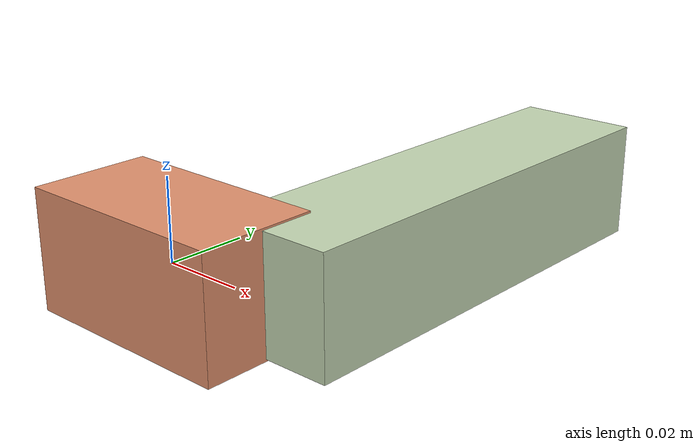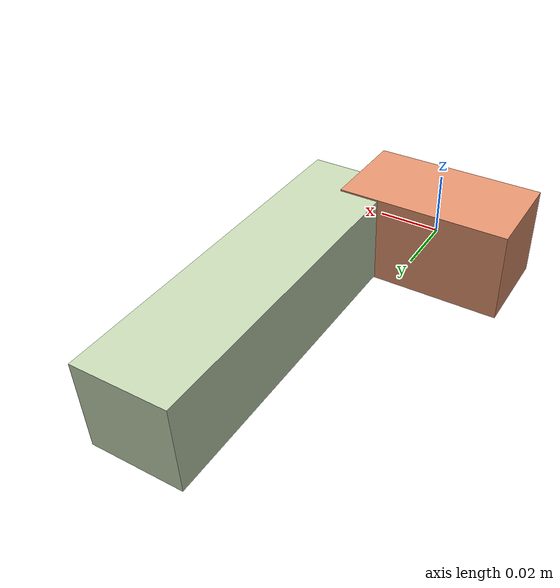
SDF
<sdf version="1.4"><world name="default"><model name="object0"><link name="link1"><pose>0 0 0 0 0 0</pose><inertial><pose>0 0 0 0 0 0</pose><mass>0.03010723345357542</mass><inertia><ixx>4.516085018036313e-06</ixx><ixy>0</ixy><iyy>1.0057129862971487e-05</iyy><ixz>0</ixz><iyz>0</iyz><izz>1.0057129862971487e-05</izz></inertia></inertial><visual name="link1_visual"><pose>0 0  0 0 0 0</pose><geometry><box><size>0.05575413602513968 0.03 0.03</size></box></geometry><material><diffuse>0.8857378945255381 0.5723068175640188 0.4286600054646875 1</diffuse></material></visual><collision><pose>0 0  0 0 0 0</pose><geometry><box><size>0.05575413602513968 0.03 0.03</size></box></geometry></collision></link><link name="link2"><pose>0.029760614620705943 0.05851517773528532 0 0 0 0</pose><inertial><pose>0 0 0 0 0 0</pose><mass>0.06199502186328007</mass><inertia><ixx>7.243769522185079e-05</ixx><ixy>0</ixy><iyy>8.994444421997549e-06</iyy><ixz>0</ixz><iyz>0</iyz><izz>7.274250407934526e-05</izz></inertia></inertial><visual name="link2_visual"><pose>0 0  0 0 0 0</pose><geometry><box><size>0.03 0.11480559604311126 0.028999999999999998</size></box></geometry><material><diffuse>0.7720813479860567 0.8424883713071805 0.7037967812029264 1</diffuse></material></visual><collision><pose>0 0  0 0 0 0</pose><geometry><box><size>0.03 0.11480559604311126 0.028999999999999998</size></box></geometry></collision></link><joint name="link_joint_0" type="fixed"><parent>link1</parent><child>link2</child><pose>0 0 0 0 0 0</pose><axis><xyz>0 0 1</xyz></axis></joint></model></world></sdf>
